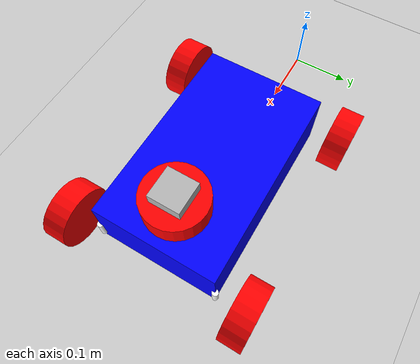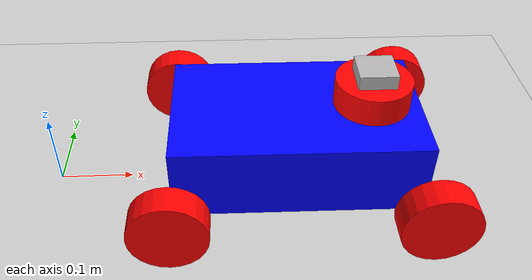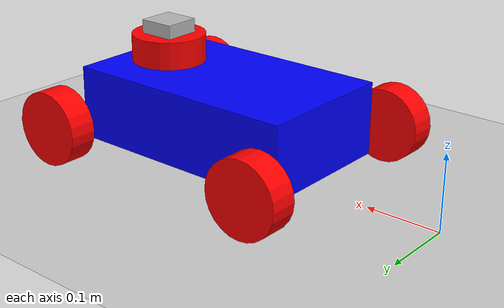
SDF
<sdf version="1.7">
 <world name="world_demo">
  <physics name="1ms" type="ignored">
   <max_step_size>0.001</max_step_size>
   <real_time_factor>1.0</real_time_factor>
  </physics>
  <plugin filename="libignition-gazebo-physics-system.so" name="ignition::gazebo::systems::Physics"/>
  <plugin filename="libignition-gazebo-user-commands-system.so" name="ignition::gazebo::systems::UserCommands"/>
  <plugin filename="libignition-gazebo-scene-broadcaster-system.so" name="ignition::gazebo::systems::SceneBroadcaster"/>
  <plugin filename="libignition-gazebo-imu-system.so" name="ignition::gazebo::systems::Imu"/>
  <plugin filename="libignition-gazebo-sensors-system.so" name="ignition::gazebo::systems::Sensors">
   <render_engine>ogre2</render_engine>
  </plugin>
  <plugin filename="libignition-gazebo-triggered-publisher-system.so" name="ignition::gazebo::systems::TriggeredPublisher">
   <input type="ignition.msgs.Int32" topic="/keyboard/keypress"><match field="data">16777235</match></input>
   <output type="ignition.msgs.Twist" topic="/cmd_vel">linear: {x: 0.5}, angular: {z: 0.0}</output>
  </plugin>
  <plugin filename="libignition-gazebo-triggered-publisher-system.so" name="ignition::gazebo::systems::TriggeredPublisher">
   <input type="ignition.msgs.Int32" topic="/keyboard/keypress"><match field="data">16777237</match></input>
   <output type="ignition.msgs.Twist" topic="/cmd_vel">linear: {x: -0.5}, angular: {z: 0.0}</output>
  </plugin>
  <plugin filename="libignition-gazebo-triggered-publisher-system.so" name="ignition::gazebo::systems::TriggeredPublisher">
   <input type="ignition.msgs.Int32" topic="/keyboard/keypress"><match field="data">16777236</match></input>
   <output type="ignition.msgs.Twist" topic="/cmd_vel">linear: {x: 0.0}, angular: {z: -0.5}</output>
  </plugin>
  <plugin filename="libignition-gazebo-triggered-publisher-system.so" name="ignition::gazebo::systems::TriggeredPublisher">
   <input type="ignition.msgs.Int32" topic="/keyboard/keypress"><match field="data">16777234</match></input>
   <output type="ignition.msgs.Twist" topic="/cmd_vel">linear: {x: 0.0}, angular: {z: 0.5}</output>
  </plugin>
  <light type="directional" name="sun">
   <pose>0 0 10 0 0 0</pose>
   <diffuse>0.8 0.8 0.8 1</diffuse>
   <specular>0.2 0.2 0.2 1</specular>
   <attenuation>
    <range>1000</range>
    <constant>0.9</constant>
    <linear>0.01</linear>
    <quadratic>0.001</quadratic>
   </attenuation>
   <direction>-0.5 0.1 -0.9</direction>
  </light>
  <model name="ground_plane">
   <static>true</static>
   <link name="link">
    <collision name="collision"><geometry><plane><normal>0 0 1</normal></plane></geometry></collision>
    <visual name="visual">
     <geometry><plane><normal>0 0 1</normal><size>100 100</size></plane></geometry>
     <material>
      <ambient>0.8 0.8 0.8 1</ambient>
      <diffuse>0.8 0.8 0.8 1</diffuse>
      <specular>0.8 0.8 0.8 1</specular>
     </material>
    </visual>
   </link>
  </model>
  <model name="racecar" canonical_link="chassis">
   <pose relative_to="world">0 0 0 0 0 0</pose>
   <frame name="lidar_frame" attached_to="chassis">
    <pose relative_to="chassis">0.10 0.0 0.06905 0 0 0</pose>
   </frame>
   <frame name="camera_frame" attached_to="chassis">
    <pose relative_to="chassis">0.10 0.0 0.06905 0 0 0</pose>
   </frame>
   <link name="chassis">
    <pose relative_to="__model__">0.3302 0 0.0708 0 0 0</pose>
    <inertial>
     <mass>1.14395</mass>
     <inertia>
      <ixx>0.00757</ixx>
      <ixy>0</ixy>
      <ixz>0</ixz>
      <iyy>0.019989</iyy>
      <iyz>0</iyz>
      <izz>0.027559</izz>
     </inertia>
    </inertial>
    <visual name="visual">
     <geometry><box><size>0.3302 0.20 0.1</size></box></geometry>
     <material>
      <ambient>0.0 0.0 1.0 1</ambient>
      <diffuse>0.0 0.0 1.0 1</diffuse>
      <specular>0.0 0.0 1.0 1</specular>
     </material>
    </visual>
    <collision name="collision"><geometry><box><size>0.3302 0.20 0.1</size></box></geometry></collision>
    <sensor name="imu_sensor" type="imu">
     <always_on>1</always_on>
     <update_rate>1</update_rate>
     <visualize>true</visualize>
     <topic>/imu</topic>
    </sensor>
    <sensor name="camera" type="camera">
     <pose relative_to="camera_frame">0.1 0.0 0.097 0 0 0</pose>
     <camera>
      <horizontal_fov>1.047</horizontal_fov>
      <image><width>320</width><height>240</height></image>
      <clip><near>0.1</near><far>100</far></clip>
     </camera>
     <always_on>1</always_on>
     <update_rate>30</update_rate>
     <visualize>true</visualize>
     <topic>/camera</topic>
    </sensor>
    <sensor name="gpu_lidar" type="gpu_lidar">
     <pose relative_to="lidar_frame">0 0 0 0 0 0</pose>
     <topic>/lidar</topic>
     <update_rate>10</update_rate>
     <ray>
      <scan>
       <horizontal>
        <samples>640</samples>
        <resolution>1</resolution>
        <min_angle>-1.396263</min_angle>
        <max_angle>1.396263</max_angle>
       </horizontal>
       <vertical>
        <samples>1</samples>
        <resolution>0.01</resolution>
        <min_angle>0</min_angle>
        <max_angle>0</max_angle>
       </vertical>
      </scan>
      <range><min>0.08</min><max>10.0</max><resolution>0.01</resolution></range>
     </ray>
     <always_on>1</always_on>
     <visualize>false</visualize>
    </sensor>
   </link>
   <link name="camera">
    <pose relative_to="chassis">0.1 0.0 0.097 0 0 0</pose>
    <inertial>
     <mass>0.01</mass>
     <inertia><ixx>0.000002</ixx><iyy>0.000002</iyy><izz>0.000004</izz></inertia>
    </inertial>
    <collision name="collision"><geometry><box><size>0.05 0.05 0.02</size></box></geometry></collision>
    <visual name="visual"><geometry><box><size>0.05 0.05 0.02</size></box></geometry></visual>
   </link>
   <link name="front_left_wheel">
    <pose relative_to="chassis">0.165 0.15 -0.020 -1.5707 0 0</pose>
    <inertial>
     <mass>0.15</mass>
     <inertia>
      <ixx>0.000169</ixx>
      <ixy>0</ixy>
      <ixz>0</ixz>
      <iyy>0.000169</iyy>
      <iyz>0</iyz>
      <izz>0.000284</izz>
     </inertia>
    </inertial>
    <visual name="visual">
     <geometry><cylinder><radius>0.0508</radius><length>0.0381</length></cylinder></geometry>
     <material>
      <ambient>1.0 0.0 0.0 1</ambient>
      <diffuse>1.0 0.0 0.0 1</diffuse>
      <specular>1.0 0.0 0.0 1</specular>
     </material>
    </visual>
    <collision name="collision">
     <geometry><cylinder><radius>0.0508</radius><length>0.0381</length></cylinder></geometry>
    </collision>
   </link>
   <link name="front_right_wheel">
    <pose relative_to="chassis">0.165 -0.15 -0.020 -1.5707 0 0</pose>
    <inertial>
     <mass>0.15</mass>
     <inertia>
      <ixx>0.000169</ixx>
      <ixy>0</ixy>
      <ixz>0</ixz>
      <iyy>0.000169</iyy>
      <iyz>0</iyz>
      <izz>0.000284</izz>
     </inertia>
    </inertial>
    <visual name="visual">
     <geometry><cylinder><radius>0.0508</radius><length>0.0381</length></cylinder></geometry>
     <material>
      <ambient>1.0 0.0 0.0 1</ambient>
      <diffuse>1.0 0.0 0.0 1</diffuse>
      <specular>1.0 0.0 0.0 1</specular>
     </material>
    </visual>
    <collision name="collision">
     <geometry><cylinder><radius>0.0508</radius><length>0.0381</length></cylinder></geometry>
    </collision>
   </link>
   <link name="rear_right_wheel">
    <pose relative_to="chassis">-0.165 -0.15 -0.020 -1.5707 0 0</pose>
    <inertial>
     <mass>0.15</mass>
     <inertia>
      <ixx>0.000169</ixx>
      <ixy>0</ixy>
      <ixz>0</ixz>
      <iyy>0.000169</iyy>
      <iyz>0</iyz>
      <izz>0.000284</izz>
     </inertia>
    </inertial>
    <visual name="visual">
     <geometry><cylinder><radius>0.0508</radius><length>0.0381</length></cylinder></geometry>
     <material>
      <ambient>1.0 0.0 0.0 1</ambient>
      <diffuse>1.0 0.0 0.0 1</diffuse>
      <specular>1.0 0.0 0.0 1</specular>
     </material>
    </visual>
    <collision name="collision">
     <geometry><cylinder><radius>0.0508</radius><length>0.0381</length></cylinder></geometry>
    </collision>
   </link>
   <link name="rear_left_wheel">
    <pose relative_to="chassis">-0.165 0.15 -0.020 -1.5707 0 0</pose>
    <inertial>
     <mass>0.15</mass>
     <inertia>
      <ixx>0.000169</ixx>
      <ixy>0</ixy>
      <ixz>0</ixz>
      <iyy>0.000169</iyy>
      <iyz>0</iyz>
      <izz>0.000284</izz>
     </inertia>
    </inertial>
    <visual name="visual">
     <geometry><cylinder><radius>0.0508</radius><length>0.0381</length></cylinder></geometry>
     <material>
      <ambient>1.0 0.0 0.0 1</ambient>
      <diffuse>1.0 0.0 0.0 1</diffuse>
      <specular>1.0 0.0 0.0 1</specular>
     </material>
    </visual>
    <collision name="collision">
     <geometry><cylinder><radius>0.0508</radius><length>0.0381</length></cylinder></geometry>
    </collision>
   </link>
   <link name="lidar">
    <pose relative_to="chassis">0.10 0.0 0.06905 0 0 0</pose>
    <inertial>
     <mass>0.05</mass>
     <inertia>
      <ixx>0.000406</ixx>
      <ixy>0</ixy>
      <ixz>0</ixz>
      <iyy>0.000406</iyy>
      <iyz>0</iyz>
      <izz>0.00001</izz>
     </inertia>
    </inertial>
    <visual name="visual">
     <geometry><cylinder><radius>0.0508</radius><length>0.0381</length></cylinder></geometry>
     <material>
      <ambient>1.0 0.0 0.0 1</ambient>
      <diffuse>1.0 0.0 0.0 1</diffuse>
      <specular>1.0 0.0 0.0 1</specular>
     </material>
    </visual>
    <collision name="collision">
     <geometry><cylinder><radius>0.0508</radius><length>0.0381</length></cylinder></geometry>
    </collision>
   </link>
   <link name="front_left_wheel_steering_link">
    <pose relative_to="chassis">0.165 0.10 -0.020 0 0 0</pose>
    <inertial><mass>0.1</mass><inertia><ixx>8e-6</ixx><iyy>8e-6</iyy><izz>1e-6</izz></inertia></inertial>
    <visual name="steering_link_visual">
     <geometry><cylinder><length>0.03</length><radius>0.005</radius></cylinder></geometry>
     <material><ambient>1 1 1</ambient><diffuse>1 1 1</diffuse></material>
    </visual>
   </link>
   <link name="front_right_wheel_steering_link">
    <pose relative_to="chassis">0.165 -0.10 -0.020 0 0 0</pose>
    <inertial><mass>0.1</mass><inertia><ixx>8e-6</ixx><iyy>8e-6</iyy><izz>1e-6</izz></inertia></inertial>
    <visual name="steering_link_visual">
     <geometry><cylinder><length>0.03</length><radius>0.005</radius></cylinder></geometry>
     <material><ambient>1 1 1</ambient><diffuse>1 1 1</diffuse></material>
    </visual>
   </link>
   <joint name="front_left_wheel_joint" type="revolute">
    <pose relative_to="front_left_wheel"/>
    <parent>chassis</parent>
    <child>front_left_wheel</child>
    <axis>
     <xyz expressed_in="__model__">0 1 0</xyz>
     <limit><lower>-1.79769e+308</lower><upper>1.79769e+308</upper></limit>
    </axis>
   </joint>
   <joint name="front_right_wheel_joint" type="revolute">
    <pose relative_to="front_right_wheel"/>
    <parent>chassis</parent>
    <child>front_right_wheel</child>
    <axis>
     <xyz expressed_in="__model__">0 1 0</xyz>
     <limit><lower>-1.79769e+308</lower><upper>1.79769e+308</upper></limit>
    </axis>
   </joint>
   <joint name="rear_right_wheel_joint" type="revolute">
    <pose relative_to="rear_right_wheel"/>
    <parent>chassis</parent>
    <child>rear_right_wheel</child>
    <axis>
     <xyz expressed_in="__model__">0 1 0</xyz>
     <limit><lower>-1.79769e+308</lower><upper>1.79769e+308</upper></limit>
    </axis>
   </joint>
   <joint name="rear_left_wheel_joint" type="revolute">
    <pose relative_to="rear_left_wheel"/>
    <parent>chassis</parent>
    <child>rear_left_wheel</child>
    <axis>
     <xyz expressed_in="__model__">0 1 0</xyz>
     <limit><lower>-1.79769e+308</lower><upper>1.79769e+308</upper></limit>
    </axis>
   </joint>
   <joint name="lidar_joint" type="fixed">
    <pose relative_to="chassis"/>
    <parent>chassis</parent>
    <child>lidar</child>
   </joint>
   <joint name="camera_joint" type="fixed">
    <pose relative_to="chassis"/>
    <parent>chassis</parent>
    <child>camera</child>
   </joint>
   <joint name="front_left_wheel_steering_joint" type="revolute">
    <parent>chassis</parent>
    <child>front_left_wheel_steering_link</child>
    <axis>
     <xyz expressed_in="__model__">0 0 1</xyz>
     <limit><lower>-1.6</lower><upper>+1.6</upper><velocity>10.0</velocity><effort>25</effort></limit>
     <use_parent_model_frame>1</use_parent_model_frame>
    </axis>
   </joint>
   <joint name="front_right_wheel_steering_joint" type="revolute">
    <parent>chassis</parent>
    <child>front_right_wheel_steering_link</child>
    <axis>
     <xyz expressed_in="__model__">0 0 1</xyz>
     <limit><lower>-1.6</lower><upper>+1.6</upper><velocity>10.0</velocity><effort>25</effort></limit>
    </axis>
   </joint>
   <plugin filename="ignition-gazebo-ackermann-steering-system" name="ignition::gazebo::systems::AckermannSteering">
    <left_joint>front_left_wheel_joint</left_joint>
    <left_joint>rear_left_wheel_joint</left_joint>
    <right_joint>front_right_wheel_joint</right_joint>
    <right_joint>rear_right_wheel_joint</right_joint>
    <left_steering_joint>front_left_wheel_steering_joint</left_steering_joint>
    <right_steering_joint>front_right_wheel_steering_joint</right_steering_joint>
    <kingpin_width>0.5</kingpin_width>
    <steering_limit>10.5</steering_limit>
    <wheel_base>0.33</wheel_base>
    <wheel_separation>0.30</wheel_separation>
    <wheel_radius>0.0508</wheel_radius>
    <min_velocity>-1</min_velocity>
    <max_velocity>1</max_velocity>
    <min_acceleration>-3</min_acceleration>
    <max_acceleration>3</max_acceleration>
   </plugin>
  </model>
 </world>
</sdf>
